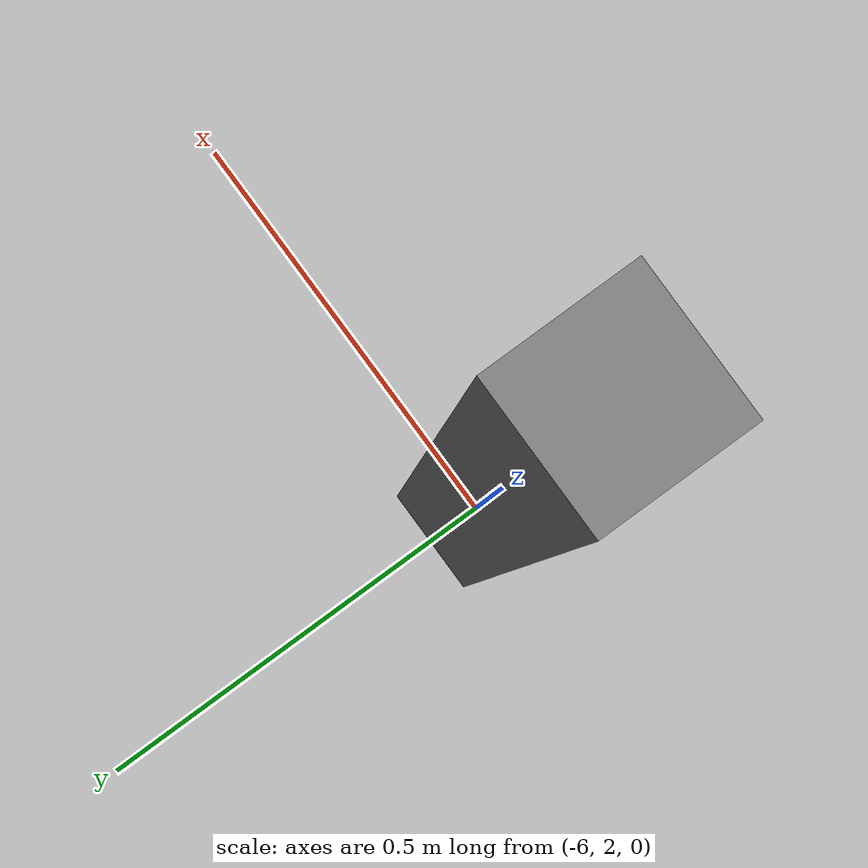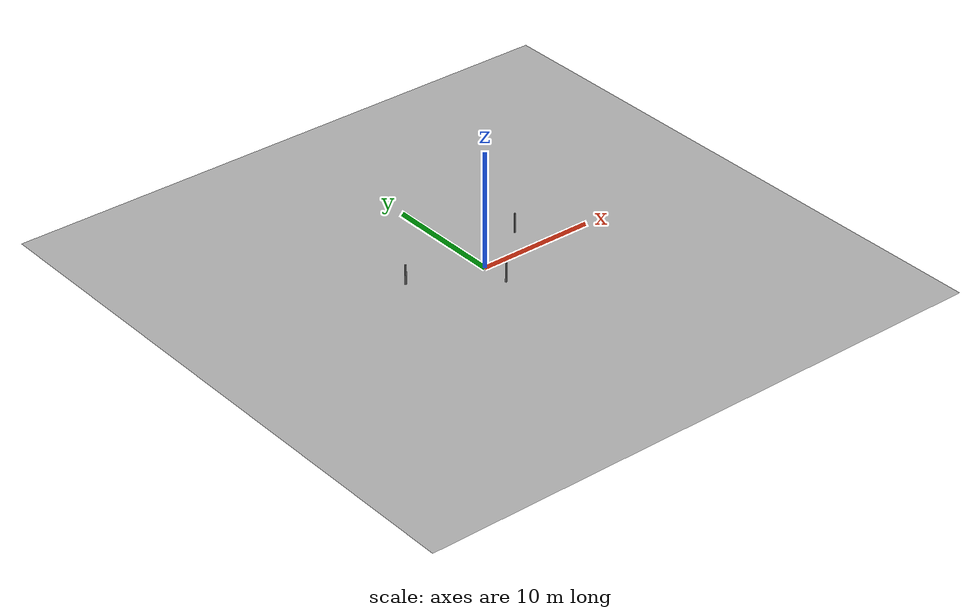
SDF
<sdf version="1.10">
 <world name="sae3_26">
  <physics type="ode">
   <max_step_size>0.004</max_step_size>
   <real_time_factor>1.0</real_time_factor>
   <real_time_update_rate>250</real_time_update_rate>
  </physics>
  <plugin name="gz::sim::systems::Physics" filename="gz-sim-physics-system"/>
  <plugin name="gz::sim::systems::UserCommands" filename="gz-sim-user-commands-system"/>
  <plugin name="gz::sim::systems::SceneBroadcaster" filename="gz-sim-scene-broadcaster-system"/>
  <plugin name="gz::sim::systems::Contact" filename="gz-sim-contact-system"/>
  <plugin name="gz::sim::systems::Imu" filename="gz-sim-imu-system"/>
  <plugin name="gz::sim::systems::AirPressure" filename="gz-sim-air-pressure-system"/>
  <plugin name="gz::sim::systems::ApplyLinkWrench" filename="gz-sim-apply-link-wrench-system"/>
  <plugin name="gz::sim::systems::NavSat" filename="gz-sim-navsat-system"/>
  <plugin name="gz::sim::systems::Sensors" filename="gz-sim-sensors-system">
   <render_engine>ogre2</render_engine>
  </plugin>
  <gravity>0 0 -9.8</gravity>
  <magnetic_field>6e-06 2.3e-05 -4.2e-05</magnetic_field>
  <atmosphere type="adiabatic"/>
  <spherical_coordinates>
   <surface_model>EARTH_WGS84</surface_model>
   <world_frame_orientation>ENU</world_frame_orientation>
   <latitude_deg>-23.203008</latitude_deg>
   <longitude_deg>-45.874897</longitude_deg>
   <elevation>0</elevation>
  </spherical_coordinates>
  <scene><ambient>0.4 0.4 0.4 1</ambient><background>0.7 0.7 0.7 1</background><shadows>true</shadows></scene>
  <light type="directional" name="sun">
   <pose>0 0 20 0 0 0</pose>
   <ambient>0.8 0.8 0.8 1</ambient>
   <diffuse>1.0 1.0 1.0 1</diffuse>
   <specular>0.2 0.2 0.2 1</specular>
   <attenuation>
    <range>1000</range>
    <constant>0.9</constant>
    <linear>0.01</linear>
    <quadratic>0.001</quadratic>
   </attenuation>
   <direction>-0.5 0.1 -0.9</direction>
  </light>
  <model name="ground_plane">
   <static>true</static>
   <link name="link">
    <collision name="collision">
     <geometry><plane><normal>0 0 1</normal><size>250 250</size></plane></geometry>
     <surface><friction><ode><mu>1</mu><mu2>1</mu2></ode></friction></surface>
    </collision>
    <visual name="grass">
     <cast_shadows>false</cast_shadows>
     <geometry><mesh><uri>file://grass_plane/meshes/grass_plane.dae</uri></mesh></geometry>
    </visual>
   </link>
  </model>
  <model name="the_void">
   <static>1</static>
   <link name="link">
    <pose>0 0 0.1 0 -0 0</pose>
    <visual name="the_void">
     <pose>0 0 2 0 -0 0</pose>
     <geometry><sphere><radius>0.25</radius></sphere></geometry>
     <material>
      <ambient>0.0 0.0 0.0 1.0</ambient>
      <diffuse>0.0 0.0 0.0 1.0</diffuse>
      <specular>0.0 0.0 0.0 1.0</specular>
     </material>
    </visual>
   </link>
   <pose>-1000 -1000 0 0 0 0</pose>
  </model>
  <model name="prisma_1">
   <static>true</static>
   <pose>-6 2 0.85 0 0 0</pose>
   <link name="link">
    <collision name="collision"><geometry><box><size>0.127 0.127 1.7</size></box></geometry></collision>
    <visual name="visual">
     <geometry><box><size>0.127 0.127 1.7</size></box></geometry>
     <material><ambient>0.5 0.5 0.5 1</ambient><diffuse>0.5 0.5 0.5 1</diffuse></material>
    </visual>
   </link>
  </model>
  <model name="prisma_2">
   <static>true</static>
   <pose>0 -2.5 0.85 0 0 0</pose>
   <link name="link">
    <collision name="collision"><geometry><box><size>0.127 0.127 1.7</size></box></geometry></collision>
    <visual name="visual">
     <geometry><box><size>0.127 0.127 1.7</size></box></geometry>
     <material><ambient>0.5 0.5 0.5 1</ambient><diffuse>0.5 0.5 0.5 1</diffuse></material>
    </visual>
   </link>
  </model>
  <model name="prisma_3">
   <static>true</static>
   <pose>5 2.5 0.85 0 0 0</pose>
   <link name="link">
    <collision name="collision"><geometry><box><size>0.127 0.127 1.7</size></box></geometry></collision>
    <visual name="visual">
     <geometry><box><size>0.127 0.127 1.7</size></box></geometry>
     <material><ambient>0.5 0.5 0.5 1</ambient><diffuse>0.5 0.5 0.5 1</diffuse></material>
    </visual>
   </link>
  </model>
 </world>
</sdf>
